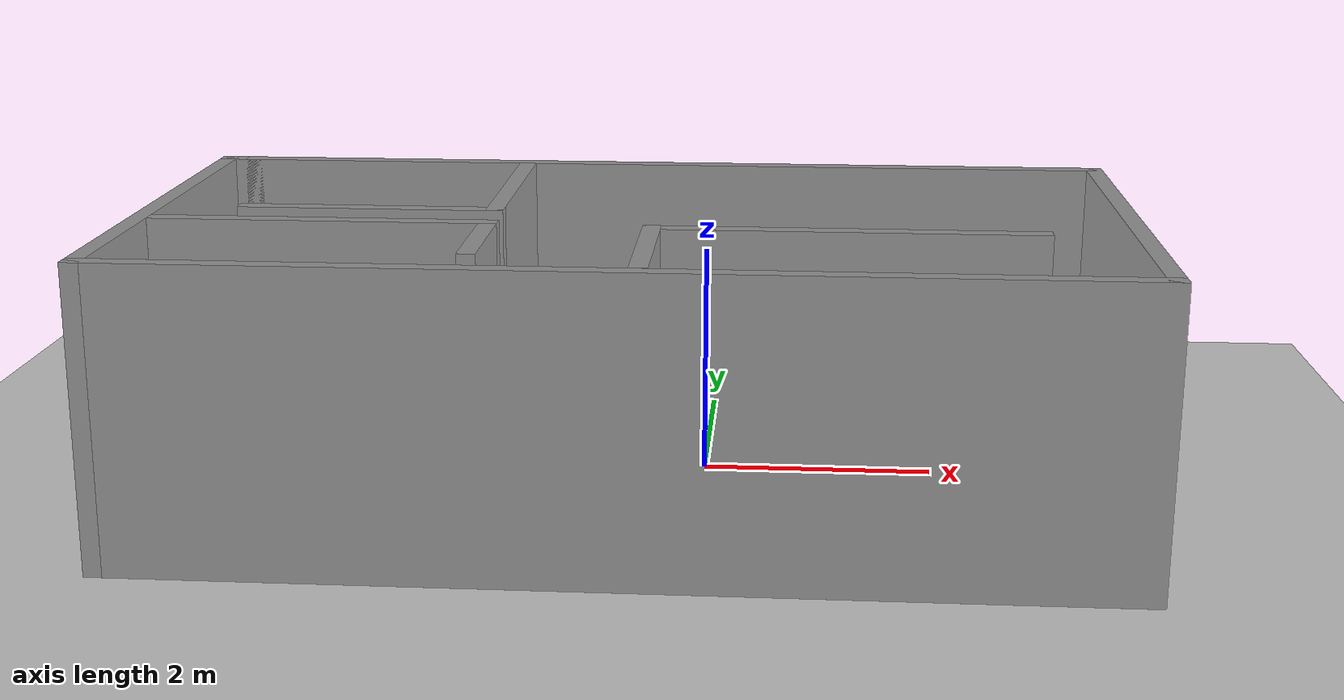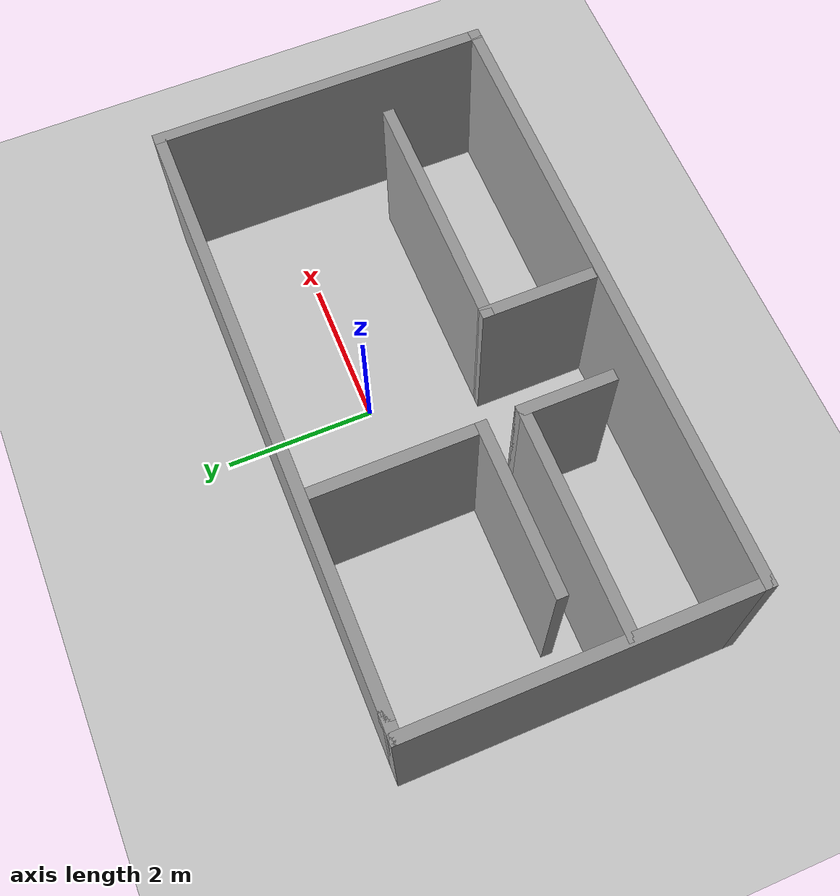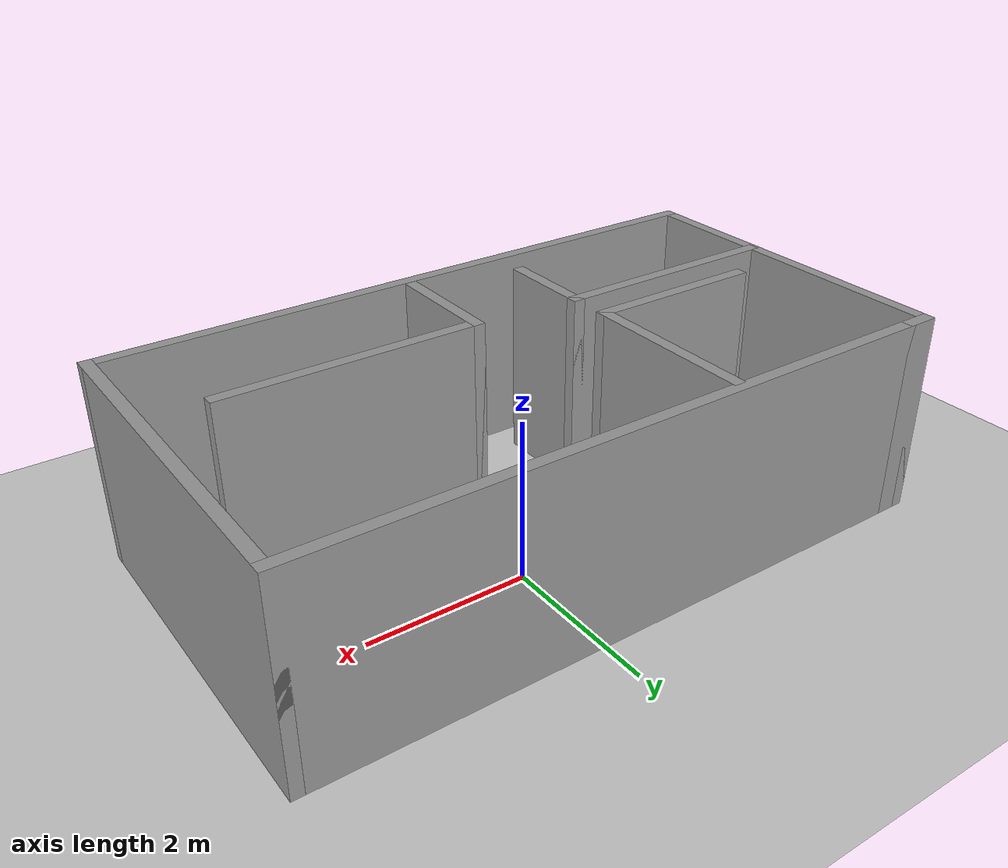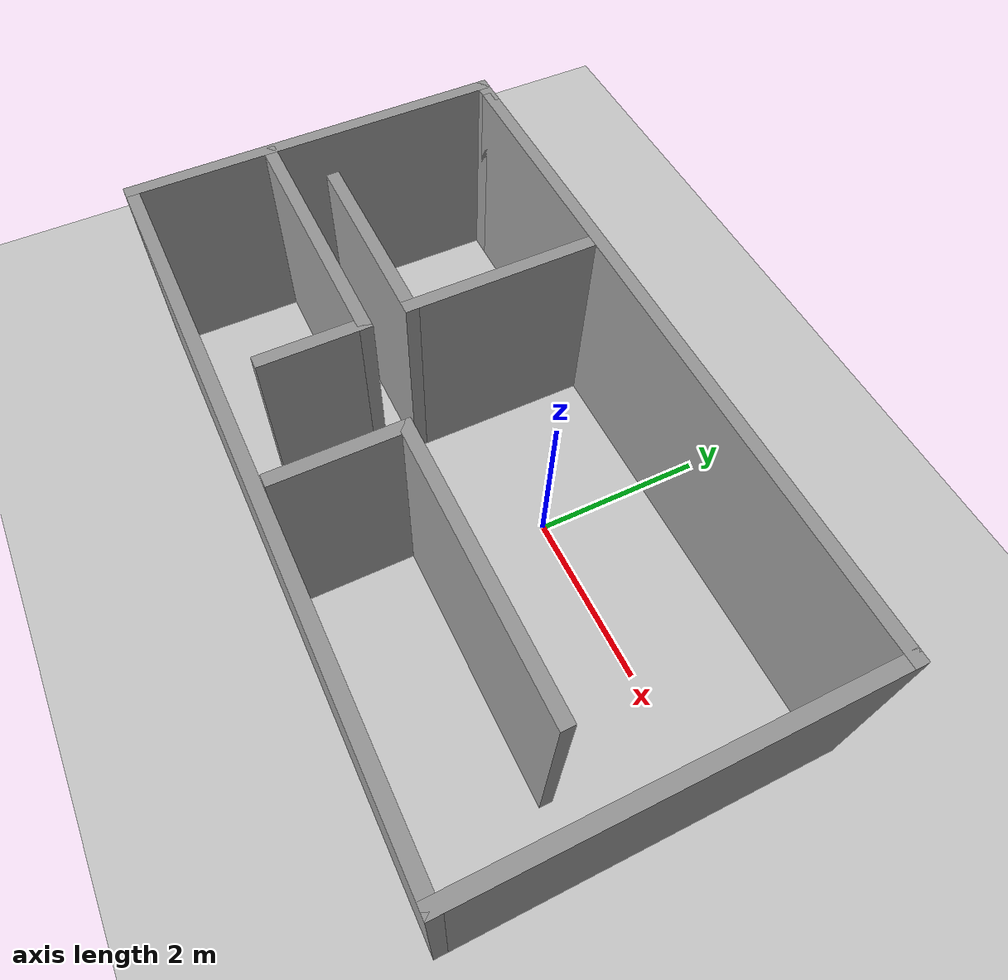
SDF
<sdf version="1.7">
 <world name="default">
  <light name="sun" type="directional">
   <pose>0 0 10 0 -0 0</pose>
   <diffuse>0.8 0.8 0.8 1</diffuse>
   <specular>0.2 0.2 0.2 1</specular>
   <attenuation>
    <range>1000</range>
    <constant>0.9</constant>
    <linear>0.01</linear>
    <quadratic>0.001</quadratic>
   </attenuation>
   <direction>-0.5 0.1 -0.9</direction>
   <spot><inner_angle>0</inner_angle><outer_angle>0</outer_angle><falloff>0</falloff></spot>
  </light>
  <model name="ground_plane">
   <static>1</static>
   <link name="link">
    <collision name="collision">
     <geometry><plane><normal>0 0 1</normal><size>100 100</size></plane></geometry>
     <surface><friction><ode><mu>100</mu><mu2>50</mu2></ode></friction></surface>
    </collision>
    <visual name="visual">
     <cast_shadows>0</cast_shadows>
     <geometry><plane><normal>0 0 1</normal><size>100 100</size></plane></geometry>
     <material>
      <script><uri>file://media/materials/scripts/gazebo.material</uri><name>Gazebo/Grey</name></script>
     </material>
    </visual>
   </link>
  </model>
  <gravity>0 0 -9.8</gravity>
  <magnetic_field>6e-06 2.3e-05 -4.2e-05</magnetic_field>
  <atmosphere type="adiabatic"/>
  <physics type="ode">
   <max_step_size>0.001</max_step_size>
   <real_time_factor>1</real_time_factor>
   <real_time_update_rate>1000</real_time_update_rate>
  </physics>
  <scene><ambient>0.4 0.4 0.4 1</ambient><background>0.7 0.7 0.7 1</background><shadows>1</shadows></scene>
  <audio><device>default</device></audio>
  <spherical_coordinates>
   <surface_model>EARTH_WGS84</surface_model>
   <latitude_deg>0</latitude_deg>
   <longitude_deg>0</longitude_deg>
   <elevation>0</elevation>
   <heading_deg>0</heading_deg>
  </spherical_coordinates>
  <model name="room">
   <pose>-0.556583 -0.297343 0 0 -0 0</pose>
   <link name="Wall_0">
    <collision name="Wall_0_Collision">
     <geometry><box><size>8 0.15 2.5</size></box></geometry>
     <pose>0 0 1.25 0 -0 0</pose>
    </collision>
    <visual name="Wall_0_Visual">
     <pose>0 0 1.25 0 -0 0</pose>
     <geometry><box><size>8 0.15 2.5</size></box></geometry>
     <material>
      <script><uri>file://media/materials/scripts/gazebo.material</uri><name>Gazebo/Grey</name></script>
      <ambient>1 1 1 1</ambient>
     </material>
     <meta><layer>0</layer></meta>
    </visual>
    <pose>0.125 1.6875 0 0 -0 0</pose>
   </link>
   <link name="Wall_10">
    <collision name="Wall_10_Collision">
     <geometry><box><size>3 0.15 2.5</size></box></geometry>
     <pose>0 0 1.25 0 -0 0</pose>
    </collision>
    <visual name="Wall_10_Visual">
     <pose>0 0 1.25 0 -0 0</pose>
     <geometry><box><size>3 0.15 2.5</size></box></geometry>
     <material>
      <script><uri>file://media/materials/scripts/gazebo.material</uri><name>Gazebo/Grey</name></script>
      <ambient>1 1 1 1</ambient>
     </material>
     <meta><layer>0</layer></meta>
    </visual>
    <pose>-2.58752 -1.04391 0 0 -0 0</pose>
   </link>
   <link name="Wall_11">
    <collision name="Wall_11_Collision">
     <geometry><box><size>1.25 0.15 2.5</size></box></geometry>
     <pose>0 0 1.25 0 -0 0</pose>
    </collision>
    <visual name="Wall_11_Visual">
     <pose>0 0 1.25 0 -0 0</pose>
     <geometry><box><size>1.25 0.15 2.5</size></box></geometry>
     <material>
      <script><uri>file://media/materials/scripts/gazebo.material</uri><name>Gazebo/Grey</name></script>
      <ambient>1 1 1 1</ambient>
     </material>
     <meta><layer>0</layer></meta>
    </visual>
    <pose>-1.16253 -1.59391 0 0 -0 -1.5708</pose>
   </link>
   <link name="Wall_14">
    <collision name="Wall_14_Collision">
     <geometry><box><size>1.5 0.15 2.5</size></box></geometry>
     <pose>0 0 1.25 0 -0 0</pose>
    </collision>
    <visual name="Wall_14_Visual">
     <pose>0 0 1.25 0 -0 0</pose>
     <geometry><box><size>1.5 0.15 2.5</size></box></geometry>
     <material>
      <script><uri>file://media/materials/scripts/gazebo.material</uri><name>Gazebo/Grey</name></script>
      <ambient>1 1 1 1</ambient>
     </material>
     <meta><layer>0</layer></meta>
    </visual>
    <pose>0.169881 -1.82895 0 0 -0 1.5708</pose>
   </link>
   <link name="Wall_15">
    <collision name="Wall_15_Collision">
     <geometry><box><size>3.25 0.15 2.5</size></box></geometry>
     <pose>0 0 1.25 0 -0 0</pose>
    </collision>
    <visual name="Wall_15_Visual">
     <pose>0 0 1.25 0 -0 0</pose>
     <geometry><box><size>3.25 0.15 2.5</size></box></geometry>
     <material>
      <script><uri>file://media/materials/scripts/gazebo.material</uri><name>Gazebo/Grey</name></script>
      <ambient>1 1 1 1</ambient>
     </material>
     <meta><layer>0</layer></meta>
    </visual>
    <pose>1.71988 -1.15395 0 0 -0 0</pose>
   </link>
   <link name="Wall_2">
    <collision name="Wall_2_Collision">
     <geometry><box><size>4.5 0.15 2.5</size></box></geometry>
     <pose>0 0 1.25 0 -0 0</pose>
    </collision>
    <visual name="Wall_2_Visual">
     <pose>0 0 1.25 0 -0 0</pose>
     <geometry><box><size>4.5 0.15 2.5</size></box></geometry>
     <material>
      <script><uri>file://media/materials/scripts/gazebo.material</uri><name>Gazebo/Grey</name></script>
      <ambient>1 1 1 1</ambient>
     </material>
     <meta><layer>0</layer></meta>
    </visual>
    <pose>4.05 -0.4875 0 0 -0 -1.5708</pose>
   </link>
   <link name="Wall_3">
    <collision name="Wall_3_Collision">
     <geometry><box><size>8.25 0.15 2.5</size></box></geometry>
     <pose>0 0 1.25 0 -0 0</pose>
    </collision>
    <visual name="Wall_3_Visual">
     <pose>0 0 1.25 0 -0 0</pose>
     <geometry><box><size>8.25 0.15 2.5</size></box></geometry>
     <material>
      <script><uri>file://media/materials/scripts/gazebo.material</uri><name>Gazebo/Grey</name></script>
      <ambient>1 1 1 1</ambient>
     </material>
     <meta><layer>0</layer></meta>
    </visual>
    <pose>-0 -2.6625 0 0 -0 3.14159</pose>
   </link>
   <link name="Wall_4">
    <collision name="Wall_4_Collision">
     <geometry><box><size>4.5 0.15 2.5</size></box></geometry>
     <pose>0 0 1.25 0 -0 0</pose>
    </collision>
    <visual name="Wall_4_Visual">
     <pose>0 0 1.25 0 -0 0</pose>
     <geometry><box><size>4.5 0.15 2.5</size></box></geometry>
     <material>
      <script><uri>file://media/materials/scripts/gazebo.material</uri><name>Gazebo/Grey</name></script>
      <ambient>1 1 1 1</ambient>
     </material>
     <meta><layer>0</layer></meta>
    </visual>
    <pose>-4.05 -0.4875 0 0 -0 1.5708</pose>
   </link>
   <link name="Wall_5">
    <collision name="Wall_5_Collision">
     <geometry><box><size>0.4 0.15 2.5</size></box></geometry>
     <pose>0 0 1.25 0 -0 0</pose>
    </collision>
    <visual name="Wall_5_Visual">
     <pose>0 0 1.25 0 -0 0</pose>
     <geometry><box><size>0.4 0.15 2.5</size></box></geometry>
     <material>
      <script><uri>file://media/materials/scripts/gazebo.material</uri><name>Gazebo/Grey</name></script>
      <ambient>1 1 1 1</ambient>
     </material>
     <meta><layer>0</layer></meta>
    </visual>
    <pose>-3.925 1.6875 0 0 -0 0</pose>
   </link>
   <link name="Wall_7">
    <collision name="Wall_7_Collision">
     <geometry><box><size>2.25 0.15 2.5</size></box></geometry>
     <pose>0 0 1.25 0 -0 0</pose>
    </collision>
    <visual name="Wall_7_Visual">
     <pose>0 0 1.25 0 -0 0</pose>
     <geometry><box><size>2.25 0.15 2.5</size></box></geometry>
     <material>
      <script><uri>file://media/materials/scripts/gazebo.material</uri><name>Gazebo/Grey</name></script>
      <ambient>1 1 1 1</ambient>
     </material>
     <meta><layer>0</layer></meta>
    </visual>
    <pose>-1.1837 0.521993 0 0 -0 -1.5708</pose>
   </link>
   <link name="Wall_8">
    <collision name="Wall_8_Collision">
     <geometry><box><size>2.25 0.15 2.5</size></box></geometry>
     <pose>0 0 1.25 0 -0 0</pose>
    </collision>
    <visual name="Wall_8_Visual">
     <pose>0 0 1.25 0 -0 0</pose>
     <geometry><box><size>2.25 0.15 2.5</size></box></geometry>
     <material>
      <script><uri>file://media/materials/scripts/gazebo.material</uri><name>Gazebo/Grey</name></script>
      <ambient>1 1 1 1</ambient>
     </material>
     <meta><layer>0</layer></meta>
    </visual>
    <pose>-2.2337 -0.528007 0 0 -0 3.14159</pose>
   </link>
   <static>1</static>
  </model>
 </world>
</sdf>
